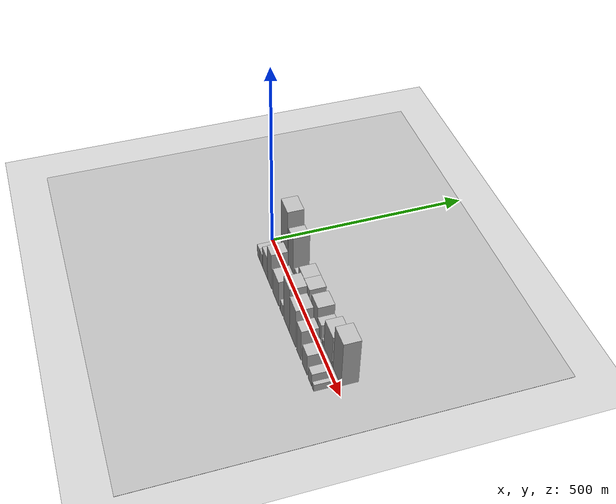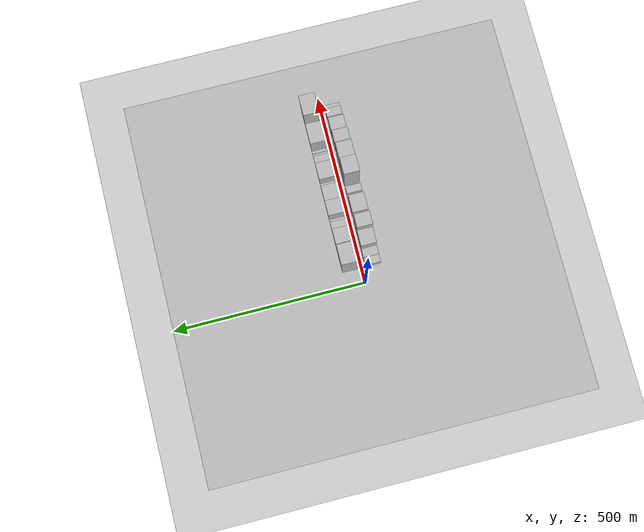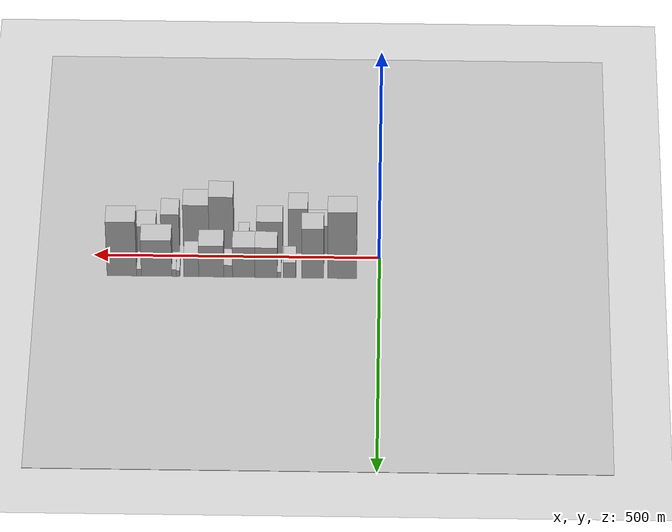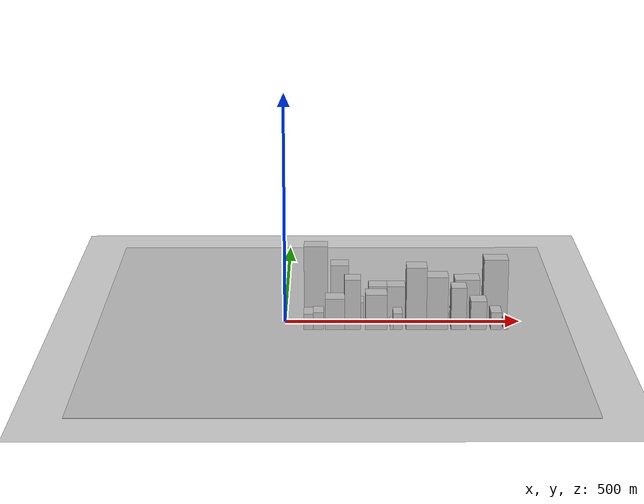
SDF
<?xml version="1.0" encoding="utf-8"?>

<sdf version="1.6">

   <world name="default">

      <gui fullscreen="0">

         <camera name="user_camera">

            <pose>-15 0 4.57585 0 0 0</pose>

            <view_controller>orbit</view_controller>

         </camera>

      </gui>

      <scene>

         <sky>

           <clouds>

             <speed>12</speed>

           </clouds>

         </sky>

         <ambient>0.4 0.4 0.4 1</ambient>

         <background>0.7 0.7 0.7 1</background>

         <shadows>1</shadows>

      </scene>

      <gravity>0 0 -9.8066</gravity>

      <magnetic_field>6e-06 2.3e-05 -4.2e-05</magnetic_field>

      <physics default="0" name="default_physics" type="ode">

         <ode>

            <solver>

               <type>quick</type>

               <iters>10</iters>

               <sor>1.0</sor>

               <use_dynamic_moi_rescaling>0</use_dynamic_moi_rescaling>

            </solver>

            <constraints>

               <cfm>0</cfm>

               <erp>0.2</erp>

               <contact_max_correcting_vel>100</contact_max_correcting_vel>

               <contact_surface_layer>0.001</contact_surface_layer>

            </constraints>

         </ode>

         <max_step_size>0.004</max_step_size>

         <real_time_factor>1</real_time_factor>

         <real_time_update_rate>250</real_time_update_rate>

      </physics>

      <light name="sun" type="directional">

         <cast_shadows>1</cast_shadows>

         <pose>0 0 10 0 0 0</pose>

         <diffuse>0.8 0.8 0.8 1</diffuse>

         <specular>0.2 0.2 0.2 1</specular>

         <attenuation>

            <range>1000</range>

            <constant>0.9</constant>

            <linear>0.01</linear>

            <quadratic>0.001</quadratic>

         </attenuation>

         <direction>-0.5 0.1 -0.9</direction>

      </light>

      <include>

         <name>ground_plane_1</name>

         <uri>model://HANNAS_ground_plane</uri>

         <pose>0 0 0  0 0 0</pose>

      </include>

      <include>

         <name>ground_plane_2</name>

         <uri>model://HANNAS_ground_plane</uri>

         <pose>100 0 0  0 0 0</pose>

      </include>

      <model name="building_1">

         <static>1</static>

         <pose frame="">65.2000 30.0000 0 0.000000 0.000000 1.570796</pose>

         <link name="link">

            <pose frame="">0 0 82.50 0 0 0</pose>

            <collision name="collision">

               <geometry>

                  <box>

                     <size>40.0000 50.4000 165.0000</size>

                  </box>

               </geometry>

               <max_contacts>10</max_contacts>

               <surface>

                  <contact>

                     <ode/>

                  </contact>

                  <bounce/>

                  <friction>

                     <torsional>

                        <ode/>

                     </torsional>

                     <ode/>

                  </friction>

               </surface>

            </collision>

            <visual name="visual">

               <cast_shadows>0</cast_shadows>

               <geometry>

                  <box>

                     <size>40.0000 50.4000 165.0000</size>

                  </box>

               </geometry>

               <material>

                  <script>

                     <uri>model://HANNAS_wall/materials/scripts</uri>

                     <uri>model://HANNAS_wall/materials/textures</uri>

                     <name>vrc/HANNAS_wall</name>

                  </script>

               </material>

            </visual>

            <self_collide>0</self_collide>

            <enable_wind>0</enable_wind>

            <kinematic>0</kinematic>

         </link>

      </model>

      <model name="building_2">

         <static>1</static>

         <pose frame="">116.5637 30.0000 0 0.000000 0.000000 1.570796</pose>

         <link name="link">

            <pose frame="">0 0 61.50 0 0 0</pose>

            <collision name="collision">

               <geometry>

                  <box>

                     <size>40.0000 38.3274 123.0000</size>

                  </box>

               </geometry>

               <max_contacts>10</max_contacts>

               <surface>

                  <contact>

                     <ode/>

                  </contact>

                  <bounce/>

                  <friction>

                     <torsional>

                        <ode/>

                     </torsional>

                     <ode/>

                  </friction>

               </surface>

            </collision>

            <visual name="visual">

               <cast_shadows>0</cast_shadows>

               <geometry>

                  <box>

                     <size>40.0000 38.3274 123.0000</size>

                  </box>

               </geometry>

               <material>

                  <script>

                     <uri>model://HANNAS_wall/materials/scripts</uri>

                     <uri>model://HANNAS_wall/materials/textures</uri>

                     <name>vrc/HANNAS_wall</name>

                  </script>

               </material>

            </visual>

            <self_collide>0</self_collide>

            <enable_wind>0</enable_wind>

            <kinematic>0</kinematic>

         </link>

      </model>

      <model name="building_3">

         <static>1</static>

         <pose frame="">156.7845 30.0000 0 0.000000 0.000000 1.570796</pose>

         <link name="link">

            <pose frame="">0 0 19.50 0 0 0</pose>

            <collision name="collision">

               <geometry>

                  <box>

                     <size>40.0000 22.1142 39.0000</size>

                  </box>

               </geometry>

               <max_contacts>10</max_contacts>

               <surface>

                  <contact>

                     <ode/>

                  </contact>

                  <bounce/>

                  <friction>

                     <torsional>

                        <ode/>

                     </torsional>

                     <ode/>

                  </friction>

               </surface>

            </collision>

            <visual name="visual">

               <cast_shadows>0</cast_shadows>

               <geometry>

                  <box>

                     <size>40.0000 22.1142 39.0000</size>

                  </box>

               </geometry>

               <material>

                  <script>

                     <uri>model://HANNAS_wall/materials/scripts</uri>

                     <uri>model://HANNAS_wall/materials/textures</uri>

                     <name>vrc/HANNAS_wall</name>

                  </script>

               </material>

            </visual>

            <self_collide>0</self_collide>

            <enable_wind>0</enable_wind>

            <kinematic>0</kinematic>

         </link>

      </model>

      <model name="building_4">

         <static>1</static>

         <pose frame="">175.0628 30.0000 0 0.000000 0.000000 1.570796</pose>

         <link name="link">

            <pose frame="">0 0 7.50 0 0 0</pose>

            <collision name="collision">

               <geometry>

                  <box>

                     <size>40.0000 6.4425 15.0000</size>

                  </box>

               </geometry>

               <max_contacts>10</max_contacts>

               <surface>

                  <contact>

                     <ode/>

                  </contact>

                  <bounce/>

                  <friction>

                     <torsional>

                        <ode/>

                     </torsional>

                     <ode/>

                  </friction>

               </surface>

            </collision>

            <visual name="visual">

               <cast_shadows>0</cast_shadows>

               <geometry>

                  <box>

                     <size>40.0000 6.4425 15.0000</size>

                  </box>

               </geometry>

               <material>

                  <script>

                     <uri>model://HANNAS_wall/materials/scripts</uri>

                     <uri>model://HANNAS_wall/materials/textures</uri>

                     <name>vrc/HANNAS_wall</name>

                  </script>

               </material>

            </visual>

            <self_collide>0</self_collide>

            <enable_wind>0</enable_wind>

            <kinematic>0</kinematic>

         </link>

      </model>

      <model name="building_5">

         <static>1</static>

         <pose frame="">197.8772 30.0000 0 0.000000 0.000000 1.570796</pose>

         <link name="link">

            <pose frame="">0 0 37.50 0 0 0</pose>

            <collision name="collision">

               <geometry>

                  <box>

                     <size>40.0000 39.1862 75.0000</size>

                  </box>

               </geometry>

               <max_contacts>10</max_contacts>

               <surface>

                  <contact>

                     <ode/>

                  </contact>

                  <bounce/>

                  <friction>

                     <torsional>

                        <ode/>

                     </torsional>

                     <ode/>

                  </friction>

               </surface>

            </collision>

            <visual name="visual">

               <cast_shadows>0</cast_shadows>

               <geometry>

                  <box>

                     <size>40.0000 39.1862 75.0000</size>

                  </box>

               </geometry>

               <material>

                  <script>

                     <uri>model://HANNAS_wall/materials/scripts</uri>

                     <uri>model://HANNAS_wall/materials/textures</uri>

                     <name>vrc/HANNAS_wall</name>

                  </script>

               </material>

            </visual>

            <self_collide>0</self_collide>

            <enable_wind>0</enable_wind>

            <kinematic>0</kinematic>

         </link>

      </model>

      <model name="building_6">

         <static>1</static>

         <pose frame="">236.9656 30.0000 0 0.000000 0.000000 1.570796</pose>

         <link name="link">

            <pose frame="">0 0 37.50 0 0 0</pose>

            <collision name="collision">

               <geometry>

                  <box>

                     <size>40.0000 38.9905 75.0000</size>

                  </box>

               </geometry>

               <max_contacts>10</max_contacts>

               <surface>

                  <contact>

                     <ode/>

                  </contact>

                  <bounce/>

                  <friction>

                     <torsional>

                        <ode/>

                     </torsional>

                     <ode/>

                  </friction>

               </surface>

            </collision>

            <visual name="visual">

               <cast_shadows>0</cast_shadows>

               <geometry>

                  <box>

                     <size>40.0000 38.9905 75.0000</size>

                  </box>

               </geometry>

               <material>

                  <script>

                     <uri>model://HANNAS_wall/materials/scripts</uri>

                     <uri>model://HANNAS_wall/materials/textures</uri>

                     <name>vrc/HANNAS_wall</name>

                  </script>

               </material>

            </visual>

            <self_collide>0</self_collide>

            <enable_wind>0</enable_wind>

            <kinematic>0</kinematic>

         </link>

      </model>

      <model name="building_7">

         <static>1</static>

         <pose frame="">264.0834 30.0000 0 0.000000 0.000000 1.570796</pose>

         <link name="link">

            <pose frame="">0 0 15.00 0 0 0</pose>

            <collision name="collision">

               <geometry>

                  <box>

                     <size>40.0000 15.2452 30.0000</size>

                  </box>

               </geometry>

               <max_contacts>10</max_contacts>

               <surface>

                  <contact>

                     <ode/>

                  </contact>

                  <bounce/>

                  <friction>

                     <torsional>

                        <ode/>

                     </torsional>

                     <ode/>

                  </friction>

               </surface>

            </collision>

            <visual name="visual">

               <cast_shadows>0</cast_shadows>

               <geometry>

                  <box>

                     <size>40.0000 15.2452 30.0000</size>

                  </box>

               </geometry>

               <material>

                  <script>

                     <uri>model://HANNAS_wall/materials/scripts</uri>

                     <uri>model://HANNAS_wall/materials/textures</uri>

                     <name>vrc/HANNAS_wall</name>

                  </script>

               </material>

            </visual>

            <self_collide>0</self_collide>

            <enable_wind>0</enable_wind>

            <kinematic>0</kinematic>

         </link>

      </model>

      <model name="building_8">

         <static>1</static>

         <pose frame="">293.6184 30.0000 0 0.000000 0.000000 1.570796</pose>

         <link name="link">

            <pose frame="">0 0 39.00 0 0 0</pose>

            <collision name="collision">

               <geometry>

                  <box>

                     <size>40.0000 43.8249 78.0000</size>

                  </box>

               </geometry>

               <max_contacts>10</max_contacts>

               <surface>

                  <contact>

                     <ode/>

                  </contact>

                  <bounce/>

                  <friction>

                     <torsional>

                        <ode/>

                     </torsional>

                     <ode/>

                  </friction>

               </surface>

            </collision>

            <visual name="visual">

               <cast_shadows>0</cast_shadows>

               <geometry>

                  <box>

                     <size>40.0000 43.8249 78.0000</size>

                  </box>

               </geometry>

               <material>

                  <script>

                     <uri>model://HANNAS_wall/materials/scripts</uri>

                     <uri>model://HANNAS_wall/materials/textures</uri>

                     <name>vrc/HANNAS_wall</name>

                  </script>

               </material>

            </visual>

            <self_collide>0</self_collide>

            <enable_wind>0</enable_wind>

            <kinematic>0</kinematic>

         </link>

      </model>

      <model name="building_9">

         <static>1</static>

         <pose frame="">328.5012 30.0000 0 0.000000 0.000000 1.570796</pose>

         <link name="link">

            <pose frame="">0 0 24.00 0 0 0</pose>

            <collision name="collision">

               <geometry>

                  <box>

                     <size>40.0000 25.9407 48.0000</size>

                  </box>

               </geometry>

               <max_contacts>10</max_contacts>

               <surface>

                  <contact>

                     <ode/>

                  </contact>

                  <bounce/>

                  <friction>

                     <torsional>

                        <ode/>

                     </torsional>

                     <ode/>

                  </friction>

               </surface>

            </collision>

            <visual name="visual">

               <cast_shadows>0</cast_shadows>

               <geometry>

                  <box>

                     <size>40.0000 25.9407 48.0000</size>

                  </box>

               </geometry>

               <material>

                  <script>

                     <uri>model://HANNAS_wall/materials/scripts</uri>

                     <uri>model://HANNAS_wall/materials/textures</uri>

                     <name>vrc/HANNAS_wall</name>

                  </script>

               </material>

            </visual>

            <self_collide>0</self_collide>

            <enable_wind>0</enable_wind>

            <kinematic>0</kinematic>

         </link>

      </model>

      <model name="building_10">

         <static>1</static>

         <pose frame="">351.7495 30.0000 0 0.000000 0.000000 1.570796</pose>

         <link name="link">

            <pose frame="">0 0 7.50 0 0 0</pose>

            <collision name="collision">

               <geometry>

                  <box>

                     <size>40.0000 6.5559 15.0000</size>

                  </box>

               </geometry>

               <max_contacts>10</max_contacts>

               <surface>

                  <contact>

                     <ode/>

                  </contact>

                  <bounce/>

                  <friction>

                     <torsional>

                        <ode/>

                     </torsional>

                     <ode/>

                  </friction>

               </surface>

            </collision>

            <visual name="visual">

               <cast_shadows>0</cast_shadows>

               <geometry>

                  <box>

                     <size>40.0000 6.5559 15.0000</size>

                  </box>

               </geometry>

               <material>

                  <script>

                     <uri>model://HANNAS_wall/materials/scripts</uri>

                     <uri>model://HANNAS_wall/materials/textures</uri>

                     <name>vrc/HANNAS_wall</name>

                  </script>

               </material>

            </visual>

            <self_collide>0</self_collide>

            <enable_wind>0</enable_wind>

            <kinematic>0</kinematic>

         </link>

      </model>

      <model name="building_11">

         <static>1</static>

         <pose frame="">358.7773 30.0000 0 0.000000 0.000000 1.570796</pose>

         <link name="link">

            <pose frame="">0 0 9.00 0 0 0</pose>

            <collision name="collision">

               <geometry>

                  <box>

                     <size>40.0000 7.4996 18.0000</size>

                  </box>

               </geometry>

               <max_contacts>10</max_contacts>

               <surface>

                  <contact>

                     <ode/>

                  </contact>

                  <bounce/>

                  <friction>

                     <torsional>

                        <ode/>

                     </torsional>

                     <ode/>

                  </friction>

               </surface>

            </collision>

            <visual name="visual">

               <cast_shadows>0</cast_shadows>

               <geometry>

                  <box>

                     <size>40.0000 7.4996 18.0000</size>

                  </box>

               </geometry>

               <material>

                  <script>

                     <uri>model://HANNAS_wall/materials/scripts</uri>

                     <uri>model://HANNAS_wall/materials/textures</uri>

                     <name>vrc/HANNAS_wall</name>

                  </script>

               </material>

            </visual>

            <self_collide>0</self_collide>

            <enable_wind>0</enable_wind>

            <kinematic>0</kinematic>

         </link>

      </model>

      <model name="building_12">

         <static>1</static>

         <pose frame="">389.2197 30.0000 0 0.000000 0.000000 1.570796</pose>

         <link name="link">

            <pose frame="">0 0 45.00 0 0 0</pose>

            <collision name="collision">

               <geometry>

                  <box>

                     <size>40.0000 53.3851 90.0000</size>

                  </box>

               </geometry>

               <max_contacts>10</max_contacts>

               <surface>

                  <contact>

                     <ode/>

                  </contact>

                  <bounce/>

                  <friction>

                     <torsional>

                        <ode/>

                     </torsional>

                     <ode/>

                  </friction>

               </surface>

            </collision>

            <visual name="visual">

               <cast_shadows>0</cast_shadows>

               <geometry>

                  <box>

                     <size>40.0000 53.3851 90.0000</size>

                  </box>

               </geometry>

               <material>

                  <script>

                     <uri>model://HANNAS_wall/materials/scripts</uri>

                     <uri>model://HANNAS_wall/materials/textures</uri>

                     <name>vrc/HANNAS_wall</name>

                  </script>

               </material>

            </visual>

            <self_collide>0</self_collide>

            <enable_wind>0</enable_wind>

            <kinematic>0</kinematic>

         </link>

      </model>

      <model name="building_13">

         <static>1</static>

         <pose frame="">419.8623 30.0000 0 0.000000 0.000000 1.570796</pose>

         <link name="link">

            <pose frame="">0 0 9.00 0 0 0</pose>

            <collision name="collision">

               <geometry>

                  <box>

                     <size>40.0000 7.9001 18.0000</size>

                  </box>

               </geometry>

               <max_contacts>10</max_contacts>

               <surface>

                  <contact>

                     <ode/>

                  </contact>

                  <bounce/>

                  <friction>

                     <torsional>

                        <ode/>

                     </torsional>

                     <ode/>

                  </friction>

               </surface>

            </collision>

            <visual name="visual">

               <cast_shadows>0</cast_shadows>

               <geometry>

                  <box>

                     <size>40.0000 7.9001 18.0000</size>

                  </box>

               </geometry>

               <material>

                  <script>

                     <uri>model://HANNAS_wall/materials/scripts</uri>

                     <uri>model://HANNAS_wall/materials/textures</uri>

                     <name>vrc/HANNAS_wall</name>

                  </script>

               </material>

            </visual>

            <self_collide>0</self_collide>

            <enable_wind>0</enable_wind>

            <kinematic>0</kinematic>

         </link>

      </model>

      <model name="building_14">

         <static>1</static>

         <pose frame="">449.7352 30.0000 0 0.000000 0.000000 1.570796</pose>

         <link name="link">

            <pose frame="">0 0 67.50 0 0 0</pose>

            <collision name="collision">

               <geometry>

                  <box>

                     <size>40.0000 51.8457 135.0000</size>

                  </box>

               </geometry>

               <max_contacts>10</max_contacts>

               <surface>

                  <contact>

                     <ode/>

                  </contact>

                  <bounce/>

                  <friction>

                     <torsional>

                        <ode/>

                     </torsional>

                     <ode/>

                  </friction>

               </surface>

            </collision>

            <visual name="visual">

               <cast_shadows>0</cast_shadows>

               <geometry>

                  <box>

                     <size>40.0000 51.8457 135.0000</size>

                  </box>

               </geometry>

               <material>

                  <script>

                     <uri>model://HANNAS_wall/materials/scripts</uri>

                     <uri>model://HANNAS_wall/materials/textures</uri>

                     <name>vrc/HANNAS_wall</name>

                  </script>

               </material>

            </visual>

            <self_collide>0</self_collide>

            <enable_wind>0</enable_wind>

            <kinematic>0</kinematic>

         </link>

      </model>

      <model name="building_15">

         <static>1</static>

         <pose frame="">49.9106 -30.0000 0 0.000000 0.000000 1.570796</pose>

         <link name="link">

            <pose frame="">0 0 18.00 0 0 0</pose>

            <collision name="collision">

               <geometry>

                  <box>

                     <size>40.0000 19.8211 36.0000</size>

                  </box>

               </geometry>

               <max_contacts>10</max_contacts>

               <surface>

                  <contact>

                     <ode/>

                  </contact>

                  <bounce/>

                  <friction>

                     <torsional>

                        <ode/>

                     </torsional>

                     <ode/>

                  </friction>

               </surface>

            </collision>

            <visual name="visual">

               <cast_shadows>0</cast_shadows>

               <geometry>

                  <box>

                     <size>40.0000 19.8211 36.0000</size>

                  </box>

               </geometry>

               <material>

                  <script>

                     <uri>model://HANNAS_wall/materials/scripts</uri>

                     <uri>model://HANNAS_wall/materials/textures</uri>

                     <name>vrc/HANNAS_wall</name>

                  </script>

               </material>

            </visual>

            <self_collide>0</self_collide>

            <enable_wind>0</enable_wind>

            <kinematic>0</kinematic>

         </link>

      </model>

      <model name="building_16">

         <static>1</static>

         <pose frame="">71.1314 -30.0000 0 0.000000 0.000000 1.570796</pose>

         <link name="link">

            <pose frame="">0 0 19.50 0 0 0</pose>

            <collision name="collision">

               <geometry>

                  <box>

                     <size>40.0000 22.6206 39.0000</size>

                  </box>

               </geometry>

               <max_contacts>10</max_contacts>

               <surface>

                  <contact>

                     <ode/>

                  </contact>

                  <bounce/>

                  <friction>

                     <torsional>

                        <ode/>

                     </torsional>

                     <ode/>

                  </friction>

               </surface>

            </collision>

            <visual name="visual">

               <cast_shadows>0</cast_shadows>

               <geometry>

                  <box>

                     <size>40.0000 22.6206 39.0000</size>

                  </box>

               </geometry>

               <material>

                  <script>

                     <uri>model://HANNAS_wall/materials/scripts</uri>

                     <uri>model://HANNAS_wall/materials/textures</uri>

                     <name>vrc/HANNAS_wall</name>

                  </script>

               </material>

            </visual>

            <self_collide>0</self_collide>

            <enable_wind>0</enable_wind>

            <kinematic>0</kinematic>

         </link>

      </model>

      <model name="building_17">

         <static>1</static>

         <pose frame="">105.7237 -30.0000 0 0.000000 0.000000 1.570796</pose>

         <link name="link">

            <pose frame="">0 0 34.50 0 0 0</pose>

            <collision name="collision">

               <geometry>

                  <box>

                     <size>40.0000 40.5639 69.0000</size>

                  </box>

               </geometry>

               <max_contacts>10</max_contacts>

               <surface>

                  <contact>

                     <ode/>

                  </contact>

                  <bounce/>

                  <friction>

                     <torsional>

                        <ode/>

                     </torsional>

                     <ode/>

                  </friction>

               </surface>

            </collision>

            <visual name="visual">

               <cast_shadows>0</cast_shadows>

               <geometry>

                  <box>

                     <size>40.0000 40.5639 69.0000</size>

                  </box>

               </geometry>

               <material>

                  <script>

                     <uri>model://HANNAS_wall/materials/scripts</uri>

                     <uri>model://HANNAS_wall/materials/textures</uri>

                     <name>vrc/HANNAS_wall</name>

                  </script>

               </material>

            </visual>

            <self_collide>0</self_collide>

            <enable_wind>0</enable_wind>

            <kinematic>0</kinematic>

         </link>

      </model>

      <model name="building_18">

         <static>1</static>

         <pose frame="">143.0766 -30.0000 0 0.000000 0.000000 1.570796</pose>

         <link name="link">

            <pose frame="">0 0 55.50 0 0 0</pose>

            <collision name="collision">

               <geometry>

                  <box>

                     <size>40.0000 34.1419 111.0000</size>

                  </box>

               </geometry>

               <max_contacts>10</max_contacts>

               <surface>

                  <contact>

                     <ode/>

                  </contact>

                  <bounce/>

                  <friction>

                     <torsional>

                        <ode/>

                     </torsional>

                     <ode/>

                  </friction>

               </surface>

            </collision>

            <visual name="visual">

               <cast_shadows>0</cast_shadows>

               <geometry>

                  <box>

                     <size>40.0000 34.1419 111.0000</size>

                  </box>

               </geometry>

               <material>

                  <script>

                     <uri>model://HANNAS_wall/materials/scripts</uri>

                     <uri>model://HANNAS_wall/materials/textures</uri>

                     <name>vrc/HANNAS_wall</name>

                  </script>

               </material>

            </visual>

            <self_collide>0</self_collide>

            <enable_wind>0</enable_wind>

            <kinematic>0</kinematic>

         </link>

      </model>

      <model name="building_19">

         <static>1</static>

         <pose frame="">192.9764 -30.0000 0 0.000000 0.000000 1.570796</pose>

         <link name="link">

            <pose frame="">0 0 39.00 0 0 0</pose>

            <collision name="collision">

               <geometry>

                  <box>

                     <size>40.0000 45.6578 78.0000</size>

                  </box>

               </geometry>

               <max_contacts>10</max_contacts>

               <surface>

                  <contact>

                     <ode/>

                  </contact>

                  <bounce/>

                  <friction>

                     <torsional>

                        <ode/>

                     </torsional>

                     <ode/>

                  </friction>

               </surface>

            </collision>

            <visual name="visual">

               <cast_shadows>0</cast_shadows>

               <geometry>

                  <box>

                     <size>40.0000 45.6578 78.0000</size>

                  </box>

               </geometry>

               <material>

                  <script>

                     <uri>model://HANNAS_wall/materials/scripts</uri>

                     <uri>model://HANNAS_wall/materials/textures</uri>

                     <name>vrc/HANNAS_wall</name>

                  </script>

               </material>

            </visual>

            <self_collide>0</self_collide>

            <enable_wind>0</enable_wind>

            <kinematic>0</kinematic>

         </link>

      </model>

      <model name="building_20">

         <static>1</static>

         <pose frame="">225.8619 -30.0000 0 0.000000 0.000000 1.570796</pose>

         <link name="link">

            <pose frame="">0 0 7.50 0 0 0</pose>

            <collision name="collision">

               <geometry>

                  <box>

                     <size>40.0000 6.1132 15.0000</size>

                  </box>

               </geometry>

               <max_contacts>10</max_contacts>

               <surface>

                  <contact>

                     <ode/>

                  </contact>

                  <bounce/>

                  <friction>

                     <torsional>

                        <ode/>

                     </torsional>

                     <ode/>

                  </friction>

               </surface>

            </collision>

            <visual name="visual">

               <cast_shadows>0</cast_shadows>

               <geometry>

                  <box>

                     <size>40.0000 6.1132 15.0000</size>

                  </box>

               </geometry>

               <material>

                  <script>

                     <uri>model://HANNAS_wall/materials/scripts</uri>

                     <uri>model://HANNAS_wall/materials/textures</uri>

                     <name>vrc/HANNAS_wall</name>

                  </script>

               </material>

            </visual>

            <self_collide>0</self_collide>

            <enable_wind>0</enable_wind>

            <kinematic>0</kinematic>

         </link>

      </model>

      <model name="building_21">

         <static>1</static>

         <pose frame="">238.4861 -30.0000 0 0.000000 0.000000 1.570796</pose>

         <link name="link">

            <pose frame="">0 0 18.00 0 0 0</pose>

            <collision name="collision">

               <geometry>

                  <box>

                     <size>40.0000 19.1352 36.0000</size>

                  </box>

               </geometry>

               <max_contacts>10</max_contacts>

               <surface>

                  <contact>

                     <ode/>

                  </contact>

                  <bounce/>

                  <friction>

                     <torsional>

                        <ode/>

                     </torsional>

                     <ode/>

                  </friction>

               </surface>

            </collision>

            <visual name="visual">

               <cast_shadows>0</cast_shadows>

               <geometry>

                  <box>

                     <size>40.0000 19.1352 36.0000</size>

                  </box>

               </geometry>

               <material>

                  <script>

                     <uri>model://HANNAS_wall/materials/scripts</uri>

                     <uri>model://HANNAS_wall/materials/textures</uri>

                     <name>vrc/HANNAS_wall</name>

                  </script>

               </material>

            </visual>

            <self_collide>0</self_collide>

            <enable_wind>0</enable_wind>

            <kinematic>0</kinematic>

         </link>

      </model>

      <model name="building_22">

         <static>1</static>

         <pose frame="">277.5426 -30.0000 0 0.000000 0.000000 1.570796</pose>

         <link name="link">

            <pose frame="">0 0 69.00 0 0 0</pose>

            <collision name="collision">

               <geometry>

                  <box>

                     <size>40.0000 42.9777 138.0000</size>

                  </box>

               </geometry>

               <max_contacts>10</max_contacts>

               <surface>

                  <contact>

                     <ode/>

                  </contact>

                  <bounce/>

                  <friction>

                     <torsional>

                        <ode/>

                     </torsional>

                     <ode/>

                  </friction>

               </surface>

            </collision>

            <visual name="visual">

               <cast_shadows>0</cast_shadows>

               <geometry>

                  <box>

                     <size>40.0000 42.9777 138.0000</size>

                  </box>

               </geometry>

               <material>

                  <script>

                     <uri>model://HANNAS_wall/materials/scripts</uri>

                     <uri>model://HANNAS_wall/materials/textures</uri>

                     <name>vrc/HANNAS_wall</name>

                  </script>

               </material>

            </visual>

            <self_collide>0</self_collide>

            <enable_wind>0</enable_wind>

            <kinematic>0</kinematic>

         </link>

      </model>

      <model name="building_23">

         <static>1</static>

         <pose frame="">321.5820 -30.0000 0 0.000000 0.000000 1.570796</pose>

         <link name="link">

            <pose frame="">0 0 58.50 0 0 0</pose>

            <collision name="collision">

               <geometry>

                  <box>

                     <size>40.0000 45.1010 117.0000</size>

                  </box>

               </geometry>

               <max_contacts>10</max_contacts>

               <surface>

                  <contact>

                     <ode/>

                  </contact>

                  <bounce/>

                  <friction>

                     <torsional>

                        <ode/>

                     </torsional>

                     <ode/>

                  </friction>

               </surface>

            </collision>

            <visual name="visual">

               <cast_shadows>0</cast_shadows>

               <geometry>

                  <box>

                     <size>40.0000 45.1010 117.0000</size>

                  </box>

               </geometry>

               <material>

                  <script>

                     <uri>model://HANNAS_wall/materials/scripts</uri>

                     <uri>model://HANNAS_wall/materials/textures</uri>

                     <name>vrc/HANNAS_wall</name>

                  </script>

               </material>

            </visual>

            <self_collide>0</self_collide>

            <enable_wind>0</enable_wind>

            <kinematic>0</kinematic>

         </link>

      </model>

      <model name="building_24">

         <static>1</static>

         <pose frame="">367.1486 -30.0000 0 0.000000 0.000000 1.570796</pose>

         <link name="link">

            <pose frame="">0 0 46.50 0 0 0</pose>

            <collision name="collision">

               <geometry>

                  <box>

                     <size>40.0000 32.0322 93.0000</size>

                  </box>

               </geometry>

               <max_contacts>10</max_contacts>

               <surface>

                  <contact>

                     <ode/>

                  </contact>

                  <bounce/>

                  <friction>

                     <torsional>

                        <ode/>

                     </torsional>

                     <ode/>

                  </friction>

               </surface>

            </collision>

            <visual name="visual">

               <cast_shadows>0</cast_shadows>

               <geometry>

                  <box>

                     <size>40.0000 32.0322 93.0000</size>

                  </box>

               </geometry>

               <material>

                  <script>

                     <uri>model://HANNAS_wall/materials/scripts</uri>

                     <uri>model://HANNAS_wall/materials/textures</uri>

                     <name>vrc/HANNAS_wall</name>

                  </script>

               </material>

            </visual>

            <self_collide>0</self_collide>

            <enable_wind>0</enable_wind>

            <kinematic>0</kinematic>

         </link>

      </model>

      <model name="building_25">

         <static>1</static>

         <pose frame="">409.0450 -30.0000 0 0.000000 0.000000 1.570796</pose>

         <link name="link">

            <pose frame="">0 0 31.50 0 0 0</pose>

            <collision name="collision">

               <geometry>

                  <box>

                     <size>40.0000 33.7606 63.0000</size>

                  </box>

               </geometry>

               <max_contacts>10</max_contacts>

               <surface>

                  <contact>

                     <ode/>

                  </contact>

                  <bounce/>

                  <friction>

                     <torsional>

                        <ode/>

                     </torsional>

                     <ode/>

                  </friction>

               </surface>

            </collision>

            <visual name="visual">

               <cast_shadows>0</cast_shadows>

               <geometry>

                  <box>

                     <size>40.0000 33.7606 63.0000</size>

                  </box>

               </geometry>

               <material>

                  <script>

                     <uri>model://HANNAS_wall/materials/scripts</uri>

                     <uri>model://HANNAS_wall/materials/textures</uri>

                     <name>vrc/HANNAS_wall</name>

                  </script>

               </material>

            </visual>

            <self_collide>0</self_collide>

            <enable_wind>0</enable_wind>

            <kinematic>0</kinematic>

         </link>

      </model>

      <model name="building_26">

         <static>1</static>

         <pose frame="">446.4721 -30.0000 0 0.000000 0.000000 1.570796</pose>

         <link name="link">

            <pose frame="">0 0 19.50 0 0 0</pose>

            <collision name="collision">

               <geometry>

                  <box>

                     <size>40.0000 23.0937 39.0000</size>

                  </box>

               </geometry>

               <max_contacts>10</max_contacts>

               <surface>

                  <contact>

                     <ode/>

                  </contact>

                  <bounce/>

                  <friction>

                     <torsional>

                        <ode/>

                     </torsional>

                     <ode/>

                  </friction>

               </surface>

            </collision>

            <visual name="visual">

               <cast_shadows>0</cast_shadows>

               <geometry>

                  <box>

                     <size>40.0000 23.0937 39.0000</size>

                  </box>

               </geometry>

               <material>

                  <script>

                     <uri>model://HANNAS_wall/materials/scripts</uri>

                     <uri>model://HANNAS_wall/materials/textures</uri>

                     <name>vrc/HANNAS_wall</name>

                  </script>

               </material>

            </visual>

            <self_collide>0</self_collide>

            <enable_wind>0</enable_wind>

            <kinematic>0</kinematic>

         </link>

      </model>

      <model name="building_27">

         <static>1</static>

         <pose frame="">467.0900 -30.0000 0 0.000000 0.000000 1.570796</pose>

         <link name="link">

            <pose frame="">0 0 10.50 0 0 0</pose>

            <collision name="collision">

               <geometry>

                  <box>

                     <size>40.0000 10.1421 21.0000</size>

                  </box>

               </geometry>

               <max_contacts>10</max_contacts>

               <surface>

                  <contact>

                     <ode/>

                  </contact>

                  <bounce/>

                  <friction>

                     <torsional>

                        <ode/>

                     </torsional>

                     <ode/>

                  </friction>

               </surface>

            </collision>

            <visual name="visual">

               <cast_shadows>0</cast_shadows>

               <geometry>

                  <box>

                     <size>40.0000 10.1421 21.0000</size>

                  </box>

               </geometry>

               <material>

                  <script>

                     <uri>model://HANNAS_wall/materials/scripts</uri>

                     <uri>model://HANNAS_wall/materials/textures</uri>

                     <name>vrc/HANNAS_wall</name>

                  </script>

               </material>

            </visual>

            <self_collide>0</self_collide>

            <enable_wind>0</enable_wind>

            <kinematic>0</kinematic>

         </link>

      </model>

   </world>

</sdf>

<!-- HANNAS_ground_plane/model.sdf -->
<sdf version="1.4">
<model name="HANNAS_ground_plane">
  <static>true</static>
    <link name="link">
      <collision name="collision">
        <geometry>
          <plane>
            <normal>0 0 1</normal>
            <size>1000 1000</size>
          </plane>
        </geometry>
        <surface>
          <friction>
            <ode>
              <mu>100</mu>
              <mu2>50</mu2>
            </ode>
          </friction>
        </surface>
      </collision>
      <visual name="visual">
        <cast_shadows>false</cast_shadows>
        <geometry>
          <plane>
            <normal>0 0 1</normal>
            <size>1000 1000</size>
          </plane>
        </geometry>
        <material>
          <script>
            <uri>model://HANNAS_ground_plane/materials/scripts/HANNAS_ground_plane.material</uri>
	    <uri>model://HANNAS_ground_plane/materials/textures</uri>
            <name>HANNASGroundPlane/Image</name>
          </script>
        </material>
      </visual>
    </link>
  </model>
</sdf>
